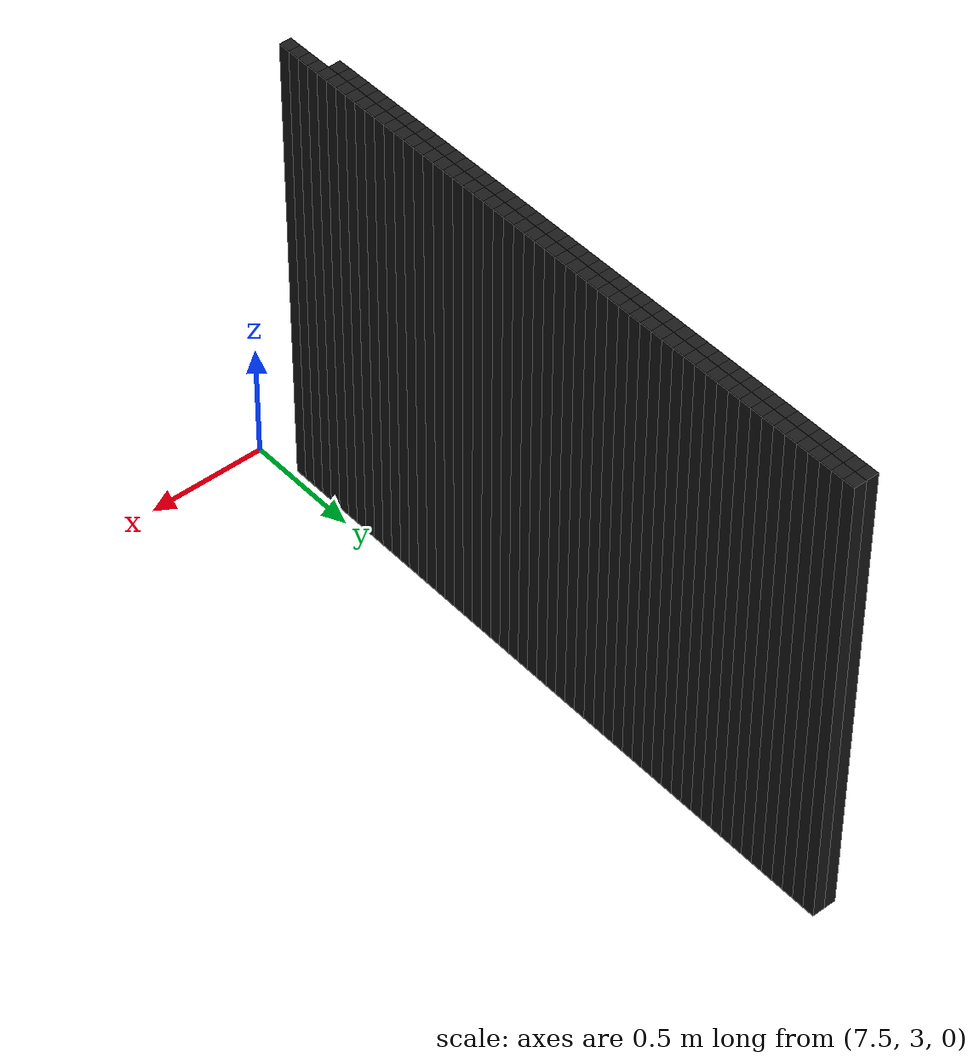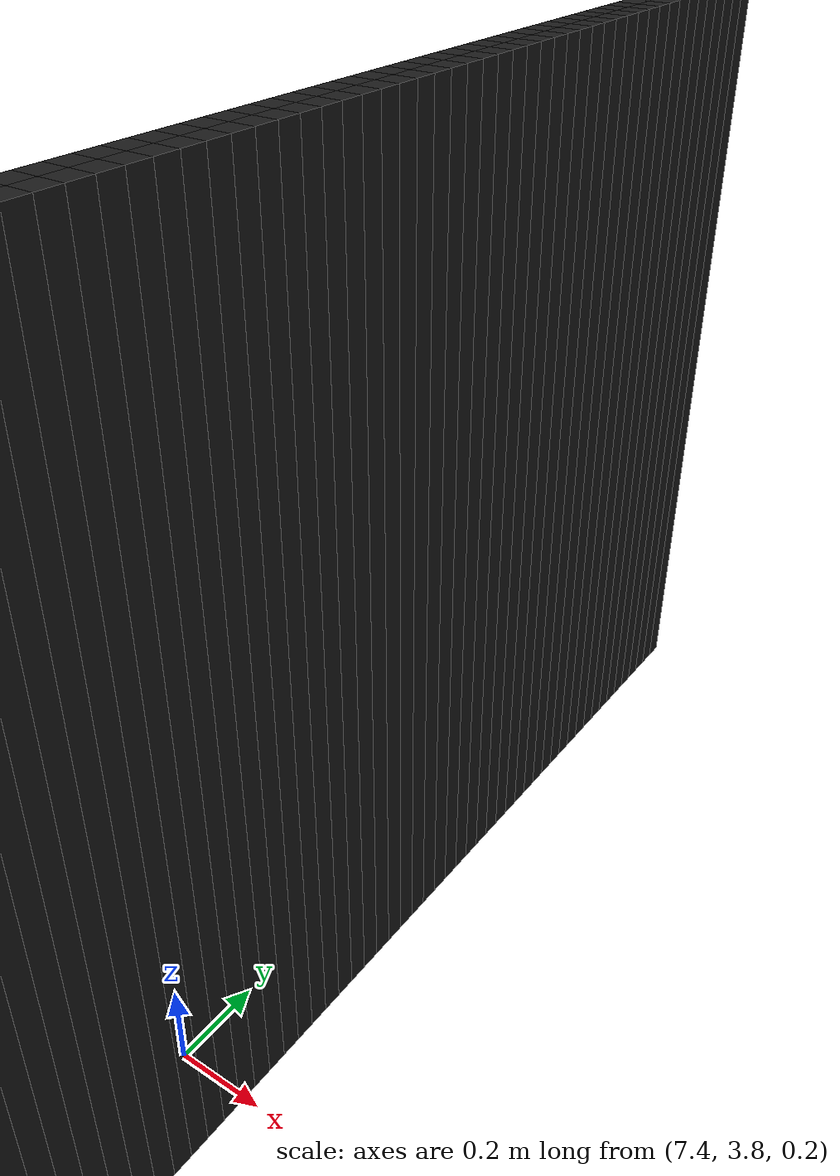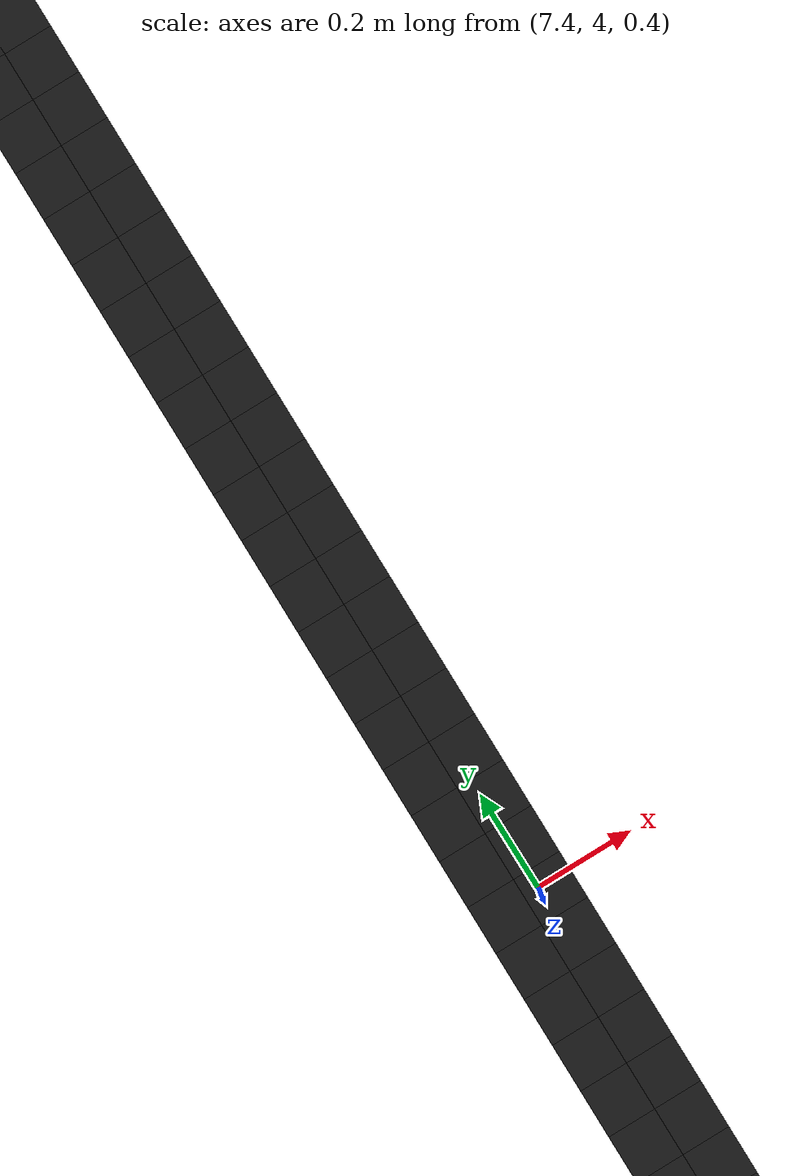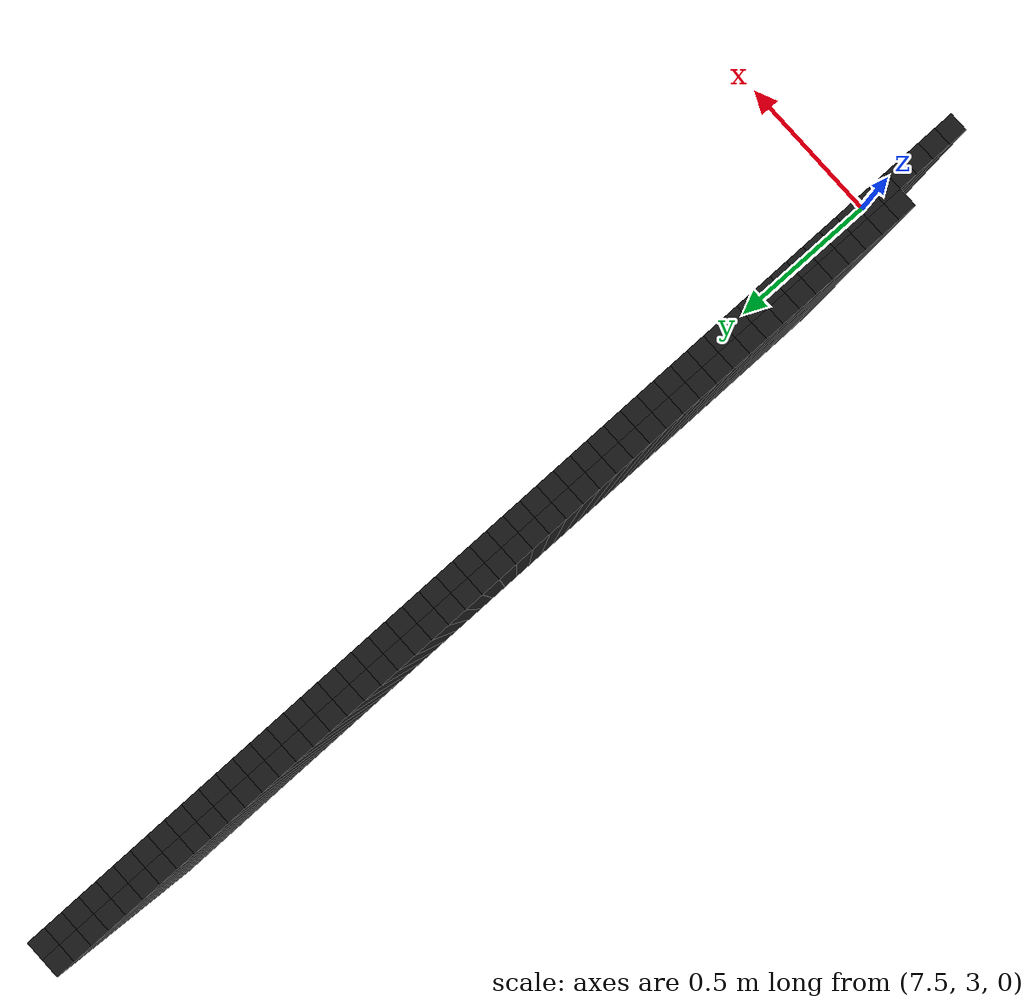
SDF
<sdf version="1.6">
 <model name="obstacle_238_49">
  <pose>7.390000000000001 5.8999999999999995 1.0 0 0 0</pose>
  <static>true</static>
  <link name="box_link">
   <collision name="box_collision"><geometry><box><size>0.05 0.05 2.0</size></box></geometry></collision>
   <visual name="box_visual">
    <geometry><box><size>0.05 0.05 2.0</size></box></geometry>
    <material><ambient>0 0 0 1</ambient><diffuse>0.1 0.1 0.1 1</diffuse></material>
   </visual>
  </link>
 </model>
 <model name="obstacle_239_49">
  <pose>7.440000000000001 5.8999999999999995 1.0 0 0 0</pose>
  <static>true</static>
  <link name="box_link">
   <collision name="box_collision"><geometry><box><size>0.05 0.05 2.0</size></box></geometry></collision>
   <visual name="box_visual">
    <geometry><box><size>0.05 0.05 2.0</size></box></geometry>
    <material><ambient>0 0 0 1</ambient><diffuse>0.1 0.1 0.1 1</diffuse></material>
   </visual>
  </link>
 </model>
 <model name="obstacle_238_50">
  <pose>7.390000000000001 5.8500000000000005 1.0 0 0 0</pose>
  <static>true</static>
  <link name="box_link">
   <collision name="box_collision"><geometry><box><size>0.05 0.05 2.0</size></box></geometry></collision>
   <visual name="box_visual">
    <geometry><box><size>0.05 0.05 2.0</size></box></geometry>
    <material><ambient>0 0 0 1</ambient><diffuse>0.1 0.1 0.1 1</diffuse></material>
   </visual>
  </link>
 </model>
 <model name="obstacle_239_50">
  <pose>7.440000000000001 5.8500000000000005 1.0 0 0 0</pose>
  <static>true</static>
  <link name="box_link">
   <collision name="box_collision"><geometry><box><size>0.05 0.05 2.0</size></box></geometry></collision>
   <visual name="box_visual">
    <geometry><box><size>0.05 0.05 2.0</size></box></geometry>
    <material><ambient>0 0 0 1</ambient><diffuse>0.1 0.1 0.1 1</diffuse></material>
   </visual>
  </link>
 </model>
 <model name="obstacle_238_51">
  <pose>7.390000000000001 5.8 1.0 0 0 0</pose>
  <static>true</static>
  <link name="box_link">
   <collision name="box_collision"><geometry><box><size>0.05 0.05 2.0</size></box></geometry></collision>
   <visual name="box_visual">
    <geometry><box><size>0.05 0.05 2.0</size></box></geometry>
    <material><ambient>0 0 0 1</ambient><diffuse>0.1 0.1 0.1 1</diffuse></material>
   </visual>
  </link>
 </model>
 <model name="obstacle_239_51">
  <pose>7.440000000000001 5.8 1.0 0 0 0</pose>
  <static>true</static>
  <link name="box_link">
   <collision name="box_collision"><geometry><box><size>0.05 0.05 2.0</size></box></geometry></collision>
   <visual name="box_visual">
    <geometry><box><size>0.05 0.05 2.0</size></box></geometry>
    <material><ambient>0 0 0 1</ambient><diffuse>0.1 0.1 0.1 1</diffuse></material>
   </visual>
  </link>
 </model>
 <model name="obstacle_238_52">
  <pose>7.390000000000001 5.75 1.0 0 0 0</pose>
  <static>true</static>
  <link name="box_link">
   <collision name="box_collision"><geometry><box><size>0.05 0.05 2.0</size></box></geometry></collision>
   <visual name="box_visual">
    <geometry><box><size>0.05 0.05 2.0</size></box></geometry>
    <material><ambient>0 0 0 1</ambient><diffuse>0.1 0.1 0.1 1</diffuse></material>
   </visual>
  </link>
 </model>
 <model name="obstacle_239_52">
  <pose>7.440000000000001 5.75 1.0 0 0 0</pose>
  <static>true</static>
  <link name="box_link">
   <collision name="box_collision"><geometry><box><size>0.05 0.05 2.0</size></box></geometry></collision>
   <visual name="box_visual">
    <geometry><box><size>0.05 0.05 2.0</size></box></geometry>
    <material><ambient>0 0 0 1</ambient><diffuse>0.1 0.1 0.1 1</diffuse></material>
   </visual>
  </link>
 </model>
 <model name="obstacle_238_53">
  <pose>7.390000000000001 5.7 1.0 0 0 0</pose>
  <static>true</static>
  <link name="box_link">
   <collision name="box_collision"><geometry><box><size>0.05 0.05 2.0</size></box></geometry></collision>
   <visual name="box_visual">
    <geometry><box><size>0.05 0.05 2.0</size></box></geometry>
    <material><ambient>0 0 0 1</ambient><diffuse>0.1 0.1 0.1 1</diffuse></material>
   </visual>
  </link>
 </model>
 <model name="obstacle_239_53">
  <pose>7.440000000000001 5.7 1.0 0 0 0</pose>
  <static>true</static>
  <link name="box_link">
   <collision name="box_collision"><geometry><box><size>0.05 0.05 2.0</size></box></geometry></collision>
   <visual name="box_visual">
    <geometry><box><size>0.05 0.05 2.0</size></box></geometry>
    <material><ambient>0 0 0 1</ambient><diffuse>0.1 0.1 0.1 1</diffuse></material>
   </visual>
  </link>
 </model>
 <model name="obstacle_238_54">
  <pose>7.390000000000001 5.65 1.0 0 0 0</pose>
  <static>true</static>
  <link name="box_link">
   <collision name="box_collision"><geometry><box><size>0.05 0.05 2.0</size></box></geometry></collision>
   <visual name="box_visual">
    <geometry><box><size>0.05 0.05 2.0</size></box></geometry>
    <material><ambient>0 0 0 1</ambient><diffuse>0.1 0.1 0.1 1</diffuse></material>
   </visual>
  </link>
 </model>
 <model name="obstacle_239_54">
  <pose>7.440000000000001 5.65 1.0 0 0 0</pose>
  <static>true</static>
  <link name="box_link">
   <collision name="box_collision"><geometry><box><size>0.05 0.05 2.0</size></box></geometry></collision>
   <visual name="box_visual">
    <geometry><box><size>0.05 0.05 2.0</size></box></geometry>
    <material><ambient>0 0 0 1</ambient><diffuse>0.1 0.1 0.1 1</diffuse></material>
   </visual>
  </link>
 </model>
 <model name="obstacle_238_55">
  <pose>7.390000000000001 5.6000000000000005 1.0 0 0 0</pose>
  <static>true</static>
  <link name="box_link">
   <collision name="box_collision"><geometry><box><size>0.05 0.05 2.0</size></box></geometry></collision>
   <visual name="box_visual">
    <geometry><box><size>0.05 0.05 2.0</size></box></geometry>
    <material><ambient>0 0 0 1</ambient><diffuse>0.1 0.1 0.1 1</diffuse></material>
   </visual>
  </link>
 </model>
 <model name="obstacle_239_55">
  <pose>7.440000000000001 5.6000000000000005 1.0 0 0 0</pose>
  <static>true</static>
  <link name="box_link">
   <collision name="box_collision"><geometry><box><size>0.05 0.05 2.0</size></box></geometry></collision>
   <visual name="box_visual">
    <geometry><box><size>0.05 0.05 2.0</size></box></geometry>
    <material><ambient>0 0 0 1</ambient><diffuse>0.1 0.1 0.1 1</diffuse></material>
   </visual>
  </link>
 </model>
 <model name="obstacle_238_56">
  <pose>7.390000000000001 5.55 1.0 0 0 0</pose>
  <static>true</static>
  <link name="box_link">
   <collision name="box_collision"><geometry><box><size>0.05 0.05 2.0</size></box></geometry></collision>
   <visual name="box_visual">
    <geometry><box><size>0.05 0.05 2.0</size></box></geometry>
    <material><ambient>0 0 0 1</ambient><diffuse>0.1 0.1 0.1 1</diffuse></material>
   </visual>
  </link>
 </model>
 <model name="obstacle_239_56">
  <pose>7.440000000000001 5.55 1.0 0 0 0</pose>
  <static>true</static>
  <link name="box_link">
   <collision name="box_collision"><geometry><box><size>0.05 0.05 2.0</size></box></geometry></collision>
   <visual name="box_visual">
    <geometry><box><size>0.05 0.05 2.0</size></box></geometry>
    <material><ambient>0 0 0 1</ambient><diffuse>0.1 0.1 0.1 1</diffuse></material>
   </visual>
  </link>
 </model>
 <model name="obstacle_238_57">
  <pose>7.390000000000001 5.5 1.0 0 0 0</pose>
  <static>true</static>
  <link name="box_link">
   <collision name="box_collision"><geometry><box><size>0.05 0.05 2.0</size></box></geometry></collision>
   <visual name="box_visual">
    <geometry><box><size>0.05 0.05 2.0</size></box></geometry>
    <material><ambient>0 0 0 1</ambient><diffuse>0.1 0.1 0.1 1</diffuse></material>
   </visual>
  </link>
 </model>
 <model name="obstacle_239_57">
  <pose>7.440000000000001 5.5 1.0 0 0 0</pose>
  <static>true</static>
  <link name="box_link">
   <collision name="box_collision"><geometry><box><size>0.05 0.05 2.0</size></box></geometry></collision>
   <visual name="box_visual">
    <geometry><box><size>0.05 0.05 2.0</size></box></geometry>
    <material><ambient>0 0 0 1</ambient><diffuse>0.1 0.1 0.1 1</diffuse></material>
   </visual>
  </link>
 </model>
 <model name="obstacle_238_58">
  <pose>7.390000000000001 5.45 1.0 0 0 0</pose>
  <static>true</static>
  <link name="box_link">
   <collision name="box_collision"><geometry><box><size>0.05 0.05 2.0</size></box></geometry></collision>
   <visual name="box_visual">
    <geometry><box><size>0.05 0.05 2.0</size></box></geometry>
    <material><ambient>0 0 0 1</ambient><diffuse>0.1 0.1 0.1 1</diffuse></material>
   </visual>
  </link>
 </model>
 <model name="obstacle_239_58">
  <pose>7.440000000000001 5.45 1.0 0 0 0</pose>
  <static>true</static>
  <link name="box_link">
   <collision name="box_collision"><geometry><box><size>0.05 0.05 2.0</size></box></geometry></collision>
   <visual name="box_visual">
    <geometry><box><size>0.05 0.05 2.0</size></box></geometry>
    <material><ambient>0 0 0 1</ambient><diffuse>0.1 0.1 0.1 1</diffuse></material>
   </visual>
  </link>
 </model>
 <model name="obstacle_238_59">
  <pose>7.390000000000001 5.4 1.0 0 0 0</pose>
  <static>true</static>
  <link name="box_link">
   <collision name="box_collision"><geometry><box><size>0.05 0.05 2.0</size></box></geometry></collision>
   <visual name="box_visual">
    <geometry><box><size>0.05 0.05 2.0</size></box></geometry>
    <material><ambient>0 0 0 1</ambient><diffuse>0.1 0.1 0.1 1</diffuse></material>
   </visual>
  </link>
 </model>
 <model name="obstacle_239_59">
  <pose>7.440000000000001 5.4 1.0 0 0 0</pose>
  <static>true</static>
  <link name="box_link">
   <collision name="box_collision"><geometry><box><size>0.05 0.05 2.0</size></box></geometry></collision>
   <visual name="box_visual">
    <geometry><box><size>0.05 0.05 2.0</size></box></geometry>
    <material><ambient>0 0 0 1</ambient><diffuse>0.1 0.1 0.1 1</diffuse></material>
   </visual>
  </link>
 </model>
 <model name="obstacle_238_60">
  <pose>7.390000000000001 5.3500000000000005 1.0 0 0 0</pose>
  <static>true</static>
  <link name="box_link">
   <collision name="box_collision"><geometry><box><size>0.05 0.05 2.0</size></box></geometry></collision>
   <visual name="box_visual">
    <geometry><box><size>0.05 0.05 2.0</size></box></geometry>
    <material><ambient>0 0 0 1</ambient><diffuse>0.1 0.1 0.1 1</diffuse></material>
   </visual>
  </link>
 </model>
 <model name="obstacle_239_60">
  <pose>7.440000000000001 5.3500000000000005 1.0 0 0 0</pose>
  <static>true</static>
  <link name="box_link">
   <collision name="box_collision"><geometry><box><size>0.05 0.05 2.0</size></box></geometry></collision>
   <visual name="box_visual">
    <geometry><box><size>0.05 0.05 2.0</size></box></geometry>
    <material><ambient>0 0 0 1</ambient><diffuse>0.1 0.1 0.1 1</diffuse></material>
   </visual>
  </link>
 </model>
 <model name="obstacle_238_61">
  <pose>7.390000000000001 5.3 1.0 0 0 0</pose>
  <static>true</static>
  <link name="box_link">
   <collision name="box_collision"><geometry><box><size>0.05 0.05 2.0</size></box></geometry></collision>
   <visual name="box_visual">
    <geometry><box><size>0.05 0.05 2.0</size></box></geometry>
    <material><ambient>0 0 0 1</ambient><diffuse>0.1 0.1 0.1 1</diffuse></material>
   </visual>
  </link>
 </model>
 <model name="obstacle_239_61">
  <pose>7.440000000000001 5.3 1.0 0 0 0</pose>
  <static>true</static>
  <link name="box_link">
   <collision name="box_collision"><geometry><box><size>0.05 0.05 2.0</size></box></geometry></collision>
   <visual name="box_visual">
    <geometry><box><size>0.05 0.05 2.0</size></box></geometry>
    <material><ambient>0 0 0 1</ambient><diffuse>0.1 0.1 0.1 1</diffuse></material>
   </visual>
  </link>
 </model>
 <model name="obstacle_238_62">
  <pose>7.390000000000001 5.25 1.0 0 0 0</pose>
  <static>true</static>
  <link name="box_link">
   <collision name="box_collision"><geometry><box><size>0.05 0.05 2.0</size></box></geometry></collision>
   <visual name="box_visual">
    <geometry><box><size>0.05 0.05 2.0</size></box></geometry>
    <material><ambient>0 0 0 1</ambient><diffuse>0.1 0.1 0.1 1</diffuse></material>
   </visual>
  </link>
 </model>
 <model name="obstacle_239_62">
  <pose>7.440000000000001 5.25 1.0 0 0 0</pose>
  <static>true</static>
  <link name="box_link">
   <collision name="box_collision"><geometry><box><size>0.05 0.05 2.0</size></box></geometry></collision>
   <visual name="box_visual">
    <geometry><box><size>0.05 0.05 2.0</size></box></geometry>
    <material><ambient>0 0 0 1</ambient><diffuse>0.1 0.1 0.1 1</diffuse></material>
   </visual>
  </link>
 </model>
 <model name="obstacle_238_63">
  <pose>7.390000000000001 5.2 1.0 0 0 0</pose>
  <static>true</static>
  <link name="box_link">
   <collision name="box_collision"><geometry><box><size>0.05 0.05 2.0</size></box></geometry></collision>
   <visual name="box_visual">
    <geometry><box><size>0.05 0.05 2.0</size></box></geometry>
    <material><ambient>0 0 0 1</ambient><diffuse>0.1 0.1 0.1 1</diffuse></material>
   </visual>
  </link>
 </model>
 <model name="obstacle_239_63">
  <pose>7.440000000000001 5.2 1.0 0 0 0</pose>
  <static>true</static>
  <link name="box_link">
   <collision name="box_collision"><geometry><box><size>0.05 0.05 2.0</size></box></geometry></collision>
   <visual name="box_visual">
    <geometry><box><size>0.05 0.05 2.0</size></box></geometry>
    <material><ambient>0 0 0 1</ambient><diffuse>0.1 0.1 0.1 1</diffuse></material>
   </visual>
  </link>
 </model>
 <model name="obstacle_238_64">
  <pose>7.390000000000001 5.15 1.0 0 0 0</pose>
  <static>true</static>
  <link name="box_link">
   <collision name="box_collision"><geometry><box><size>0.05 0.05 2.0</size></box></geometry></collision>
   <visual name="box_visual">
    <geometry><box><size>0.05 0.05 2.0</size></box></geometry>
    <material><ambient>0 0 0 1</ambient><diffuse>0.1 0.1 0.1 1</diffuse></material>
   </visual>
  </link>
 </model>
 <model name="obstacle_239_64">
  <pose>7.440000000000001 5.15 1.0 0 0 0</pose>
  <static>true</static>
  <link name="box_link">
   <collision name="box_collision"><geometry><box><size>0.05 0.05 2.0</size></box></geometry></collision>
   <visual name="box_visual">
    <geometry><box><size>0.05 0.05 2.0</size></box></geometry>
    <material><ambient>0 0 0 1</ambient><diffuse>0.1 0.1 0.1 1</diffuse></material>
   </visual>
  </link>
 </model>
 <model name="obstacle_238_65">
  <pose>7.390000000000001 5.1000000000000005 1.0 0 0 0</pose>
  <static>true</static>
  <link name="box_link">
   <collision name="box_collision"><geometry><box><size>0.05 0.05 2.0</size></box></geometry></collision>
   <visual name="box_visual">
    <geometry><box><size>0.05 0.05 2.0</size></box></geometry>
    <material><ambient>0 0 0 1</ambient><diffuse>0.1 0.1 0.1 1</diffuse></material>
   </visual>
  </link>
 </model>
 <model name="obstacle_239_65">
  <pose>7.440000000000001 5.1000000000000005 1.0 0 0 0</pose>
  <static>true</static>
  <link name="box_link">
   <collision name="box_collision"><geometry><box><size>0.05 0.05 2.0</size></box></geometry></collision>
   <visual name="box_visual">
    <geometry><box><size>0.05 0.05 2.0</size></box></geometry>
    <material><ambient>0 0 0 1</ambient><diffuse>0.1 0.1 0.1 1</diffuse></material>
   </visual>
  </link>
 </model>
 <model name="obstacle_238_66">
  <pose>7.390000000000001 5.05 1.0 0 0 0</pose>
  <static>true</static>
  <link name="box_link">
   <collision name="box_collision"><geometry><box><size>0.05 0.05 2.0</size></box></geometry></collision>
   <visual name="box_visual">
    <geometry><box><size>0.05 0.05 2.0</size></box></geometry>
    <material><ambient>0 0 0 1</ambient><diffuse>0.1 0.1 0.1 1</diffuse></material>
   </visual>
  </link>
 </model>
 <model name="obstacle_239_66">
  <pose>7.440000000000001 5.05 1.0 0 0 0</pose>
  <static>true</static>
  <link name="box_link">
   <collision name="box_collision"><geometry><box><size>0.05 0.05 2.0</size></box></geometry></collision>
   <visual name="box_visual">
    <geometry><box><size>0.05 0.05 2.0</size></box></geometry>
    <material><ambient>0 0 0 1</ambient><diffuse>0.1 0.1 0.1 1</diffuse></material>
   </visual>
  </link>
 </model>
 <model name="obstacle_238_67">
  <pose>7.390000000000001 5.0 1.0 0 0 0</pose>
  <static>true</static>
  <link name="box_link">
   <collision name="box_collision"><geometry><box><size>0.05 0.05 2.0</size></box></geometry></collision>
   <visual name="box_visual">
    <geometry><box><size>0.05 0.05 2.0</size></box></geometry>
    <material><ambient>0 0 0 1</ambient><diffuse>0.1 0.1 0.1 1</diffuse></material>
   </visual>
  </link>
 </model>
 <model name="obstacle_239_67">
  <pose>7.440000000000001 5.0 1.0 0 0 0</pose>
  <static>true</static>
  <link name="box_link">
   <collision name="box_collision"><geometry><box><size>0.05 0.05 2.0</size></box></geometry></collision>
   <visual name="box_visual">
    <geometry><box><size>0.05 0.05 2.0</size></box></geometry>
    <material><ambient>0 0 0 1</ambient><diffuse>0.1 0.1 0.1 1</diffuse></material>
   </visual>
  </link>
 </model>
 <model name="obstacle_238_68">
  <pose>7.390000000000001 4.95 1.0 0 0 0</pose>
  <static>true</static>
  <link name="box_link">
   <collision name="box_collision"><geometry><box><size>0.05 0.05 2.0</size></box></geometry></collision>
   <visual name="box_visual">
    <geometry><box><size>0.05 0.05 2.0</size></box></geometry>
    <material><ambient>0 0 0 1</ambient><diffuse>0.1 0.1 0.1 1</diffuse></material>
   </visual>
  </link>
 </model>
 <model name="obstacle_239_68">
  <pose>7.440000000000001 4.95 1.0 0 0 0</pose>
  <static>true</static>
  <link name="box_link">
   <collision name="box_collision"><geometry><box><size>0.05 0.05 2.0</size></box></geometry></collision>
   <visual name="box_visual">
    <geometry><box><size>0.05 0.05 2.0</size></box></geometry>
    <material><ambient>0 0 0 1</ambient><diffuse>0.1 0.1 0.1 1</diffuse></material>
   </visual>
  </link>
 </model>
 <model name="obstacle_238_69">
  <pose>7.390000000000001 4.9 1.0 0 0 0</pose>
  <static>true</static>
  <link name="box_link">
   <collision name="box_collision"><geometry><box><size>0.05 0.05 2.0</size></box></geometry></collision>
   <visual name="box_visual">
    <geometry><box><size>0.05 0.05 2.0</size></box></geometry>
    <material><ambient>0 0 0 1</ambient><diffuse>0.1 0.1 0.1 1</diffuse></material>
   </visual>
  </link>
 </model>
 <model name="obstacle_239_69">
  <pose>7.440000000000001 4.9 1.0 0 0 0</pose>
  <static>true</static>
  <link name="box_link">
   <collision name="box_collision"><geometry><box><size>0.05 0.05 2.0</size></box></geometry></collision>
   <visual name="box_visual">
    <geometry><box><size>0.05 0.05 2.0</size></box></geometry>
    <material><ambient>0 0 0 1</ambient><diffuse>0.1 0.1 0.1 1</diffuse></material>
   </visual>
  </link>
 </model>
 <model name="obstacle_238_70">
  <pose>7.390000000000001 4.8500000000000005 1.0 0 0 0</pose>
  <static>true</static>
  <link name="box_link">
   <collision name="box_collision"><geometry><box><size>0.05 0.05 2.0</size></box></geometry></collision>
   <visual name="box_visual">
    <geometry><box><size>0.05 0.05 2.0</size></box></geometry>
    <material><ambient>0 0 0 1</ambient><diffuse>0.1 0.1 0.1 1</diffuse></material>
   </visual>
  </link>
 </model>
 <model name="obstacle_239_70">
  <pose>7.440000000000001 4.8500000000000005 1.0 0 0 0</pose>
  <static>true</static>
  <link name="box_link">
   <collision name="box_collision"><geometry><box><size>0.05 0.05 2.0</size></box></geometry></collision>
   <visual name="box_visual">
    <geometry><box><size>0.05 0.05 2.0</size></box></geometry>
    <material><ambient>0 0 0 1</ambient><diffuse>0.1 0.1 0.1 1</diffuse></material>
   </visual>
  </link>
 </model>
 <model name="obstacle_238_71">
  <pose>7.390000000000001 4.8 1.0 0 0 0</pose>
  <static>true</static>
  <link name="box_link">
   <collision name="box_collision"><geometry><box><size>0.05 0.05 2.0</size></box></geometry></collision>
   <visual name="box_visual">
    <geometry><box><size>0.05 0.05 2.0</size></box></geometry>
    <material><ambient>0 0 0 1</ambient><diffuse>0.1 0.1 0.1 1</diffuse></material>
   </visual>
  </link>
 </model>
 <model name="obstacle_239_71">
  <pose>7.440000000000001 4.8 1.0 0 0 0</pose>
  <static>true</static>
  <link name="box_link">
   <collision name="box_collision"><geometry><box><size>0.05 0.05 2.0</size></box></geometry></collision>
   <visual name="box_visual">
    <geometry><box><size>0.05 0.05 2.0</size></box></geometry>
    <material><ambient>0 0 0 1</ambient><diffuse>0.1 0.1 0.1 1</diffuse></material>
   </visual>
  </link>
 </model>
 <model name="obstacle_238_72">
  <pose>7.390000000000001 4.75 1.0 0 0 0</pose>
  <static>true</static>
  <link name="box_link">
   <collision name="box_collision"><geometry><box><size>0.05 0.05 2.0</size></box></geometry></collision>
   <visual name="box_visual">
    <geometry><box><size>0.05 0.05 2.0</size></box></geometry>
    <material><ambient>0 0 0 1</ambient><diffuse>0.1 0.1 0.1 1</diffuse></material>
   </visual>
  </link>
 </model>
 <model name="obstacle_239_72">
  <pose>7.440000000000001 4.75 1.0 0 0 0</pose>
  <static>true</static>
  <link name="box_link">
   <collision name="box_collision"><geometry><box><size>0.05 0.05 2.0</size></box></geometry></collision>
   <visual name="box_visual">
    <geometry><box><size>0.05 0.05 2.0</size></box></geometry>
    <material><ambient>0 0 0 1</ambient><diffuse>0.1 0.1 0.1 1</diffuse></material>
   </visual>
  </link>
 </model>
 <model name="obstacle_238_73">
  <pose>7.390000000000001 4.7 1.0 0 0 0</pose>
  <static>true</static>
  <link name="box_link">
   <collision name="box_collision"><geometry><box><size>0.05 0.05 2.0</size></box></geometry></collision>
   <visual name="box_visual">
    <geometry><box><size>0.05 0.05 2.0</size></box></geometry>
    <material><ambient>0 0 0 1</ambient><diffuse>0.1 0.1 0.1 1</diffuse></material>
   </visual>
  </link>
 </model>
 <model name="obstacle_239_73">
  <pose>7.440000000000001 4.7 1.0 0 0 0</pose>
  <static>true</static>
  <link name="box_link">
   <collision name="box_collision"><geometry><box><size>0.05 0.05 2.0</size></box></geometry></collision>
   <visual name="box_visual">
    <geometry><box><size>0.05 0.05 2.0</size></box></geometry>
    <material><ambient>0 0 0 1</ambient><diffuse>0.1 0.1 0.1 1</diffuse></material>
   </visual>
  </link>
 </model>
 <model name="obstacle_238_74">
  <pose>7.390000000000001 4.65 1.0 0 0 0</pose>
  <static>true</static>
  <link name="box_link">
   <collision name="box_collision"><geometry><box><size>0.05 0.05 2.0</size></box></geometry></collision>
   <visual name="box_visual">
    <geometry><box><size>0.05 0.05 2.0</size></box></geometry>
    <material><ambient>0 0 0 1</ambient><diffuse>0.1 0.1 0.1 1</diffuse></material>
   </visual>
  </link>
 </model>
 <model name="obstacle_239_74">
  <pose>7.440000000000001 4.65 1.0 0 0 0</pose>
  <static>true</static>
  <link name="box_link">
   <collision name="box_collision"><geometry><box><size>0.05 0.05 2.0</size></box></geometry></collision>
   <visual name="box_visual">
    <geometry><box><size>0.05 0.05 2.0</size></box></geometry>
    <material><ambient>0 0 0 1</ambient><diffuse>0.1 0.1 0.1 1</diffuse></material>
   </visual>
  </link>
 </model>
 <model name="obstacle_238_75">
  <pose>7.390000000000001 4.6000000000000005 1.0 0 0 0</pose>
  <static>true</static>
  <link name="box_link">
   <collision name="box_collision"><geometry><box><size>0.05 0.05 2.0</size></box></geometry></collision>
   <visual name="box_visual">
    <geometry><box><size>0.05 0.05 2.0</size></box></geometry>
    <material><ambient>0 0 0 1</ambient><diffuse>0.1 0.1 0.1 1</diffuse></material>
   </visual>
  </link>
 </model>
 <model name="obstacle_239_75">
  <pose>7.440000000000001 4.6000000000000005 1.0 0 0 0</pose>
  <static>true</static>
  <link name="box_link">
   <collision name="box_collision"><geometry><box><size>0.05 0.05 2.0</size></box></geometry></collision>
   <visual name="box_visual">
    <geometry><box><size>0.05 0.05 2.0</size></box></geometry>
    <material><ambient>0 0 0 1</ambient><diffuse>0.1 0.1 0.1 1</diffuse></material>
   </visual>
  </link>
 </model>
 <model name="obstacle_238_76">
  <pose>7.390000000000001 4.55 1.0 0 0 0</pose>
  <static>true</static>
  <link name="box_link">
   <collision name="box_collision"><geometry><box><size>0.05 0.05 2.0</size></box></geometry></collision>
   <visual name="box_visual">
    <geometry><box><size>0.05 0.05 2.0</size></box></geometry>
    <material><ambient>0 0 0 1</ambient><diffuse>0.1 0.1 0.1 1</diffuse></material>
   </visual>
  </link>
 </model>
 <model name="obstacle_239_76">
  <pose>7.440000000000001 4.55 1.0 0 0 0</pose>
  <static>true</static>
  <link name="box_link">
   <collision name="box_collision"><geometry><box><size>0.05 0.05 2.0</size></box></geometry></collision>
   <visual name="box_visual">
    <geometry><box><size>0.05 0.05 2.0</size></box></geometry>
    <material><ambient>0 0 0 1</ambient><diffuse>0.1 0.1 0.1 1</diffuse></material>
   </visual>
  </link>
 </model>
 <model name="obstacle_238_77">
  <pose>7.390000000000001 4.5 1.0 0 0 0</pose>
  <static>true</static>
  <link name="box_link">
   <collision name="box_collision"><geometry><box><size>0.05 0.05 2.0</size></box></geometry></collision>
   <visual name="box_visual">
    <geometry><box><size>0.05 0.05 2.0</size></box></geometry>
    <material><ambient>0 0 0 1</ambient><diffuse>0.1 0.1 0.1 1</diffuse></material>
   </visual>
  </link>
 </model>
 <model name="obstacle_239_77">
  <pose>7.440000000000001 4.5 1.0 0 0 0</pose>
  <static>true</static>
  <link name="box_link">
   <collision name="box_collision"><geometry><box><size>0.05 0.05 2.0</size></box></geometry></collision>
   <visual name="box_visual">
    <geometry><box><size>0.05 0.05 2.0</size></box></geometry>
    <material><ambient>0 0 0 1</ambient><diffuse>0.1 0.1 0.1 1</diffuse></material>
   </visual>
  </link>
 </model>
 <model name="obstacle_238_78">
  <pose>7.390000000000001 4.45 1.0 0 0 0</pose>
  <static>true</static>
  <link name="box_link">
   <collision name="box_collision"><geometry><box><size>0.05 0.05 2.0</size></box></geometry></collision>
   <visual name="box_visual">
    <geometry><box><size>0.05 0.05 2.0</size></box></geometry>
    <material><ambient>0 0 0 1</ambient><diffuse>0.1 0.1 0.1 1</diffuse></material>
   </visual>
  </link>
 </model>
 <model name="obstacle_239_78">
  <pose>7.440000000000001 4.45 1.0 0 0 0</pose>
  <static>true</static>
  <link name="box_link">
   <collision name="box_collision"><geometry><box><size>0.05 0.05 2.0</size></box></geometry></collision>
   <visual name="box_visual">
    <geometry><box><size>0.05 0.05 2.0</size></box></geometry>
    <material><ambient>0 0 0 1</ambient><diffuse>0.1 0.1 0.1 1</diffuse></material>
   </visual>
  </link>
 </model>
 <model name="obstacle_238_79">
  <pose>7.390000000000001 4.4 1.0 0 0 0</pose>
  <static>true</static>
  <link name="box_link">
   <collision name="box_collision"><geometry><box><size>0.05 0.05 2.0</size></box></geometry></collision>
   <visual name="box_visual">
    <geometry><box><size>0.05 0.05 2.0</size></box></geometry>
    <material><ambient>0 0 0 1</ambient><diffuse>0.1 0.1 0.1 1</diffuse></material>
   </visual>
  </link>
 </model>
 <model name="obstacle_239_79">
  <pose>7.440000000000001 4.4 1.0 0 0 0</pose>
  <static>true</static>
  <link name="box_link">
   <collision name="box_collision"><geometry><box><size>0.05 0.05 2.0</size></box></geometry></collision>
   <visual name="box_visual">
    <geometry><box><size>0.05 0.05 2.0</size></box></geometry>
    <material><ambient>0 0 0 1</ambient><diffuse>0.1 0.1 0.1 1</diffuse></material>
   </visual>
  </link>
 </model>
 <model name="obstacle_238_80">
  <pose>7.390000000000001 4.3500000000000005 1.0 0 0 0</pose>
  <static>true</static>
  <link name="box_link">
   <collision name="box_collision"><geometry><box><size>0.05 0.05 2.0</size></box></geometry></collision>
   <visual name="box_visual">
    <geometry><box><size>0.05 0.05 2.0</size></box></geometry>
    <material><ambient>0 0 0 1</ambient><diffuse>0.1 0.1 0.1 1</diffuse></material>
   </visual>
  </link>
 </model>
 <model name="obstacle_239_80">
  <pose>7.440000000000001 4.3500000000000005 1.0 0 0 0</pose>
  <static>true</static>
  <link name="box_link">
   <collision name="box_collision"><geometry><box><size>0.05 0.05 2.0</size></box></geometry></collision>
   <visual name="box_visual">
    <geometry><box><size>0.05 0.05 2.0</size></box></geometry>
    <material><ambient>0 0 0 1</ambient><diffuse>0.1 0.1 0.1 1</diffuse></material>
   </visual>
  </link>
 </model>
 <model name="obstacle_238_81">
  <pose>7.390000000000001 4.3 1.0 0 0 0</pose>
  <static>true</static>
  <link name="box_link">
   <collision name="box_collision"><geometry><box><size>0.05 0.05 2.0</size></box></geometry></collision>
   <visual name="box_visual">
    <geometry><box><size>0.05 0.05 2.0</size></box></geometry>
    <material><ambient>0 0 0 1</ambient><diffuse>0.1 0.1 0.1 1</diffuse></material>
   </visual>
  </link>
 </model>
 <model name="obstacle_239_81">
  <pose>7.440000000000001 4.3 1.0 0 0 0</pose>
  <static>true</static>
  <link name="box_link">
   <collision name="box_collision"><geometry><box><size>0.05 0.05 2.0</size></box></geometry></collision>
   <visual name="box_visual">
    <geometry><box><size>0.05 0.05 2.0</size></box></geometry>
    <material><ambient>0 0 0 1</ambient><diffuse>0.1 0.1 0.1 1</diffuse></material>
   </visual>
  </link>
 </model>
 <model name="obstacle_238_82">
  <pose>7.390000000000001 4.25 1.0 0 0 0</pose>
  <static>true</static>
  <link name="box_link">
   <collision name="box_collision"><geometry><box><size>0.05 0.05 2.0</size></box></geometry></collision>
   <visual name="box_visual">
    <geometry><box><size>0.05 0.05 2.0</size></box></geometry>
    <material><ambient>0 0 0 1</ambient><diffuse>0.1 0.1 0.1 1</diffuse></material>
   </visual>
  </link>
 </model>
 <model name="obstacle_239_82">
  <pose>7.440000000000001 4.25 1.0 0 0 0</pose>
  <static>true</static>
  <link name="box_link">
   <collision name="box_collision"><geometry><box><size>0.05 0.05 2.0</size></box></geometry></collision>
   <visual name="box_visual">
    <geometry><box><size>0.05 0.05 2.0</size></box></geometry>
    <material><ambient>0 0 0 1</ambient><diffuse>0.1 0.1 0.1 1</diffuse></material>
   </visual>
  </link>
 </model>
 <model name="obstacle_238_83">
  <pose>7.390000000000001 4.2 1.0 0 0 0</pose>
  <static>true</static>
  <link name="box_link">
   <collision name="box_collision"><geometry><box><size>0.05 0.05 2.0</size></box></geometry></collision>
   <visual name="box_visual">
    <geometry><box><size>0.05 0.05 2.0</size></box></geometry>
    <material><ambient>0 0 0 1</ambient><diffuse>0.1 0.1 0.1 1</diffuse></material>
   </visual>
  </link>
 </model>
 <model name="obstacle_239_83">
  <pose>7.440000000000001 4.2 1.0 0 0 0</pose>
  <static>true</static>
  <link name="box_link">
   <collision name="box_collision"><geometry><box><size>0.05 0.05 2.0</size></box></geometry></collision>
   <visual name="box_visual">
    <geometry><box><size>0.05 0.05 2.0</size></box></geometry>
    <material><ambient>0 0 0 1</ambient><diffuse>0.1 0.1 0.1 1</diffuse></material>
   </visual>
  </link>
 </model>
 <model name="obstacle_238_84">
  <pose>7.390000000000001 4.15 1.0 0 0 0</pose>
  <static>true</static>
  <link name="box_link">
   <collision name="box_collision"><geometry><box><size>0.05 0.05 2.0</size></box></geometry></collision>
   <visual name="box_visual">
    <geometry><box><size>0.05 0.05 2.0</size></box></geometry>
    <material><ambient>0 0 0 1</ambient><diffuse>0.1 0.1 0.1 1</diffuse></material>
   </visual>
  </link>
 </model>
 <model name="obstacle_239_84">
  <pose>7.440000000000001 4.15 1.0 0 0 0</pose>
  <static>true</static>
  <link name="box_link">
   <collision name="box_collision"><geometry><box><size>0.05 0.05 2.0</size></box></geometry></collision>
   <visual name="box_visual">
    <geometry><box><size>0.05 0.05 2.0</size></box></geometry>
    <material><ambient>0 0 0 1</ambient><diffuse>0.1 0.1 0.1 1</diffuse></material>
   </visual>
  </link>
 </model>
 <model name="obstacle_238_85">
  <pose>7.390000000000001 4.1000000000000005 1.0 0 0 0</pose>
  <static>true</static>
  <link name="box_link">
   <collision name="box_collision"><geometry><box><size>0.05 0.05 2.0</size></box></geometry></collision>
   <visual name="box_visual">
    <geometry><box><size>0.05 0.05 2.0</size></box></geometry>
    <material><ambient>0 0 0 1</ambient><diffuse>0.1 0.1 0.1 1</diffuse></material>
   </visual>
  </link>
 </model>
 <model name="obstacle_239_85">
  <pose>7.440000000000001 4.1000000000000005 1.0 0 0 0</pose>
  <static>true</static>
  <link name="box_link">
   <collision name="box_collision"><geometry><box><size>0.05 0.05 2.0</size></box></geometry></collision>
   <visual name="box_visual">
    <geometry><box><size>0.05 0.05 2.0</size></box></geometry>
    <material><ambient>0 0 0 1</ambient><diffuse>0.1 0.1 0.1 1</diffuse></material>
   </visual>
  </link>
 </model>
 <model name="obstacle_238_86">
  <pose>7.390000000000001 4.05 1.0 0 0 0</pose>
  <static>true</static>
  <link name="box_link">
   <collision name="box_collision"><geometry><box><size>0.05 0.05 2.0</size></box></geometry></collision>
   <visual name="box_visual">
    <geometry><box><size>0.05 0.05 2.0</size></box></geometry>
    <material><ambient>0 0 0 1</ambient><diffuse>0.1 0.1 0.1 1</diffuse></material>
   </visual>
  </link>
 </model>
 <model name="obstacle_239_86">
  <pose>7.440000000000001 4.05 1.0 0 0 0</pose>
  <static>true</static>
  <link name="box_link">
   <collision name="box_collision"><geometry><box><size>0.05 0.05 2.0</size></box></geometry></collision>
   <visual name="box_visual">
    <geometry><box><size>0.05 0.05 2.0</size></box></geometry>
    <material><ambient>0 0 0 1</ambient><diffuse>0.1 0.1 0.1 1</diffuse></material>
   </visual>
  </link>
 </model>
 <model name="obstacle_238_87">
  <pose>7.390000000000001 4.0 1.0 0 0 0</pose>
  <static>true</static>
  <link name="box_link">
   <collision name="box_collision"><geometry><box><size>0.05 0.05 2.0</size></box></geometry></collision>
   <visual name="box_visual">
    <geometry><box><size>0.05 0.05 2.0</size></box></geometry>
    <material><ambient>0 0 0 1</ambient><diffuse>0.1 0.1 0.1 1</diffuse></material>
   </visual>
  </link>
 </model>
 <model name="obstacle_239_87">
  <pose>7.440000000000001 4.0 1.0 0 0 0</pose>
  <static>true</static>
  <link name="box_link">
   <collision name="box_collision"><geometry><box><size>0.05 0.05 2.0</size></box></geometry></collision>
   <visual name="box_visual">
    <geometry><box><size>0.05 0.05 2.0</size></box></geometry>
    <material><ambient>0 0 0 1</ambient><diffuse>0.1 0.1 0.1 1</diffuse></material>
   </visual>
  </link>
 </model>
 <model name="obstacle_238_88">
  <pose>7.390000000000001 3.95 1.0 0 0 0</pose>
  <static>true</static>
  <link name="box_link">
   <collision name="box_collision"><geometry><box><size>0.05 0.05 2.0</size></box></geometry></collision>
   <visual name="box_visual">
    <geometry><box><size>0.05 0.05 2.0</size></box></geometry>
    <material><ambient>0 0 0 1</ambient><diffuse>0.1 0.1 0.1 1</diffuse></material>
   </visual>
  </link>
 </model>
 <model name="obstacle_239_88">
  <pose>7.440000000000001 3.95 1.0 0 0 0</pose>
  <static>true</static>
  <link name="box_link">
   <collision name="box_collision"><geometry><box><size>0.05 0.05 2.0</size></box></geometry></collision>
   <visual name="box_visual">
    <geometry><box><size>0.05 0.05 2.0</size></box></geometry>
    <material><ambient>0 0 0 1</ambient><diffuse>0.1 0.1 0.1 1</diffuse></material>
   </visual>
  </link>
 </model>
 <model name="obstacle_238_89">
  <pose>7.390000000000001 3.9000000000000004 1.0 0 0 0</pose>
  <static>true</static>
  <link name="box_link">
   <collision name="box_collision"><geometry><box><size>0.05 0.05 2.0</size></box></geometry></collision>
   <visual name="box_visual">
    <geometry><box><size>0.05 0.05 2.0</size></box></geometry>
    <material><ambient>0 0 0 1</ambient><diffuse>0.1 0.1 0.1 1</diffuse></material>
   </visual>
  </link>
 </model>
 <model name="obstacle_239_89">
  <pose>7.440000000000001 3.9000000000000004 1.0 0 0 0</pose>
  <static>true</static>
  <link name="box_link">
   <collision name="box_collision"><geometry><box><size>0.05 0.05 2.0</size></box></geometry></collision>
   <visual name="box_visual">
    <geometry><box><size>0.05 0.05 2.0</size></box></geometry>
    <material><ambient>0 0 0 1</ambient><diffuse>0.1 0.1 0.1 1</diffuse></material>
   </visual>
  </link>
 </model>
 <model name="obstacle_238_90">
  <pose>7.390000000000001 3.8500000000000005 1.0 0 0 0</pose>
  <static>true</static>
  <link name="box_link">
   <collision name="box_collision"><geometry><box><size>0.05 0.05 2.0</size></box></geometry></collision>
   <visual name="box_visual">
    <geometry><box><size>0.05 0.05 2.0</size></box></geometry>
    <material><ambient>0 0 0 1</ambient><diffuse>0.1 0.1 0.1 1</diffuse></material>
   </visual>
  </link>
 </model>
 <model name="obstacle_239_90">
  <pose>7.440000000000001 3.8500000000000005 1.0 0 0 0</pose>
  <static>true</static>
  <link name="box_link">
   <collision name="box_collision"><geometry><box><size>0.05 0.05 2.0</size></box></geometry></collision>
   <visual name="box_visual">
    <geometry><box><size>0.05 0.05 2.0</size></box></geometry>
    <material><ambient>0 0 0 1</ambient><diffuse>0.1 0.1 0.1 1</diffuse></material>
   </visual>
  </link>
 </model>
 <model name="obstacle_238_91">
  <pose>7.390000000000001 3.8 1.0 0 0 0</pose>
  <static>true</static>
  <link name="box_link">
   <collision name="box_collision"><geometry><box><size>0.05 0.05 2.0</size></box></geometry></collision>
   <visual name="box_visual">
    <geometry><box><size>0.05 0.05 2.0</size></box></geometry>
    <material><ambient>0 0 0 1</ambient><diffuse>0.1 0.1 0.1 1</diffuse></material>
   </visual>
  </link>
 </model>
 <model name="obstacle_239_91">
  <pose>7.440000000000001 3.8 1.0 0 0 0</pose>
  <static>true</static>
  <link name="box_link">
   <collision name="box_collision"><geometry><box><size>0.05 0.05 2.0</size></box></geometry></collision>
   <visual name="box_visual">
    <geometry><box><size>0.05 0.05 2.0</size></box></geometry>
    <material><ambient>0 0 0 1</ambient><diffuse>0.1 0.1 0.1 1</diffuse></material>
   </visual>
  </link>
 </model>
 <model name="obstacle_238_92">
  <pose>7.390000000000001 3.75 1.0 0 0 0</pose>
  <static>true</static>
  <link name="box_link">
   <collision name="box_collision"><geometry><box><size>0.05 0.05 2.0</size></box></geometry></collision>
   <visual name="box_visual">
    <geometry><box><size>0.05 0.05 2.0</size></box></geometry>
    <material><ambient>0 0 0 1</ambient><diffuse>0.1 0.1 0.1 1</diffuse></material>
   </visual>
  </link>
 </model>
 <model name="obstacle_239_92">
  <pose>7.440000000000001 3.75 1.0 0 0 0</pose>
  <static>true</static>
  <link name="box_link">
   <collision name="box_collision"><geometry><box><size>0.05 0.05 2.0</size></box></geometry></collision>
   <visual name="box_visual">
    <geometry><box><size>0.05 0.05 2.0</size></box></geometry>
    <material><ambient>0 0 0 1</ambient><diffuse>0.1 0.1 0.1 1</diffuse></material>
   </visual>
  </link>
 </model>
 <model name="obstacle_238_93">
  <pose>7.390000000000001 3.7 1.0 0 0 0</pose>
  <static>true</static>
  <link name="box_link">
   <collision name="box_collision"><geometry><box><size>0.05 0.05 2.0</size></box></geometry></collision>
   <visual name="box_visual">
    <geometry><box><size>0.05 0.05 2.0</size></box></geometry>
    <material><ambient>0 0 0 1</ambient><diffuse>0.1 0.1 0.1 1</diffuse></material>
   </visual>
  </link>
 </model>
 <model name="obstacle_239_93">
  <pose>7.440000000000001 3.7 1.0 0 0 0</pose>
  <static>true</static>
  <link name="box_link">
   <collision name="box_collision"><geometry><box><size>0.05 0.05 2.0</size></box></geometry></collision>
   <visual name="box_visual">
    <geometry><box><size>0.05 0.05 2.0</size></box></geometry>
    <material><ambient>0 0 0 1</ambient><diffuse>0.1 0.1 0.1 1</diffuse></material>
   </visual>
  </link>
 </model>
 <model name="obstacle_238_94">
  <pose>7.390000000000001 3.6500000000000004 1.0 0 0 0</pose>
  <static>true</static>
  <link name="box_link">
   <collision name="box_collision"><geometry><box><size>0.05 0.05 2.0</size></box></geometry></collision>
   <visual name="box_visual">
    <geometry><box><size>0.05 0.05 2.0</size></box></geometry>
    <material><ambient>0 0 0 1</ambient><diffuse>0.1 0.1 0.1 1</diffuse></material>
   </visual>
  </link>
 </model>
 <model name="obstacle_239_94">
  <pose>7.440000000000001 3.6500000000000004 1.0 0 0 0</pose>
  <static>true</static>
  <link name="box_link">
   <collision name="box_collision"><geometry><box><size>0.05 0.05 2.0</size></box></geometry></collision>
   <visual name="box_visual">
    <geometry><box><size>0.05 0.05 2.0</size></box></geometry>
    <material><ambient>0 0 0 1</ambient><diffuse>0.1 0.1 0.1 1</diffuse></material>
   </visual>
  </link>
 </model>
 <model name="obstacle_238_95">
  <pose>7.390000000000001 3.6000000000000005 1.0 0 0 0</pose>
  <static>true</static>
  <link name="box_link">
   <collision name="box_collision"><geometry><box><size>0.05 0.05 2.0</size></box></geometry></collision>
   <visual name="box_visual">
    <geometry><box><size>0.05 0.05 2.0</size></box></geometry>
    <material><ambient>0 0 0 1</ambient><diffuse>0.1 0.1 0.1 1</diffuse></material>
   </visual>
  </link>
 </model>
 <model name="obstacle_239_95">
  <pose>7.440000000000001 3.6000000000000005 1.0 0 0 0</pose>
  <static>true</static>
  <link name="box_link">
   <collision name="box_collision"><geometry><box><size>0.05 0.05 2.0</size></box></geometry></collision>
   <visual name="box_visual">
    <geometry><box><size>0.05 0.05 2.0</size></box></geometry>
    <material><ambient>0 0 0 1</ambient><diffuse>0.1 0.1 0.1 1</diffuse></material>
   </visual>
  </link>
 </model>
 <model name="obstacle_238_96">
  <pose>7.390000000000001 3.55 1.0 0 0 0</pose>
  <static>true</static>
  <link name="box_link">
   <collision name="box_collision"><geometry><box><size>0.05 0.05 2.0</size></box></geometry></collision>
   <visual name="box_visual">
    <geometry><box><size>0.05 0.05 2.0</size></box></geometry>
    <material><ambient>0 0 0 1</ambient><diffuse>0.1 0.1 0.1 1</diffuse></material>
   </visual>
  </link>
 </model>
 <model name="obstacle_239_96">
  <pose>7.440000000000001 3.55 1.0 0 0 0</pose>
  <static>true</static>
  <link name="box_link">
   <collision name="box_collision"><geometry><box><size>0.05 0.05 2.0</size></box></geometry></collision>
   <visual name="box_visual">
    <geometry><box><size>0.05 0.05 2.0</size></box></geometry>
    <material><ambient>0 0 0 1</ambient><diffuse>0.1 0.1 0.1 1</diffuse></material>
   </visual>
  </link>
 </model>
 <model name="obstacle_238_97">
  <pose>7.390000000000001 3.5 1.0 0 0 0</pose>
  <static>true</static>
  <link name="box_link">
   <collision name="box_collision"><geometry><box><size>0.05 0.05 2.0</size></box></geometry></collision>
   <visual name="box_visual">
    <geometry><box><size>0.05 0.05 2.0</size></box></geometry>
    <material><ambient>0 0 0 1</ambient><diffuse>0.1 0.1 0.1 1</diffuse></material>
   </visual>
  </link>
 </model>
 <model name="obstacle_239_97">
  <pose>7.440000000000001 3.5 1.0 0 0 0</pose>
  <static>true</static>
  <link name="box_link">
   <collision name="box_collision"><geometry><box><size>0.05 0.05 2.0</size></box></geometry></collision>
   <visual name="box_visual">
    <geometry><box><size>0.05 0.05 2.0</size></box></geometry>
    <material><ambient>0 0 0 1</ambient><diffuse>0.1 0.1 0.1 1</diffuse></material>
   </visual>
  </link>
 </model>
 <model name="obstacle_238_98">
  <pose>7.390000000000001 3.45 1.0 0 0 0</pose>
  <static>true</static>
  <link name="box_link">
   <collision name="box_collision"><geometry><box><size>0.05 0.05 2.0</size></box></geometry></collision>
   <visual name="box_visual">
    <geometry><box><size>0.05 0.05 2.0</size></box></geometry>
    <material><ambient>0 0 0 1</ambient><diffuse>0.1 0.1 0.1 1</diffuse></material>
   </visual>
  </link>
 </model>
 <model name="obstacle_239_98">
  <pose>7.440000000000001 3.45 1.0 0 0 0</pose>
  <static>true</static>
  <link name="box_link">
   <collision name="box_collision"><geometry><box><size>0.05 0.05 2.0</size></box></geometry></collision>
   <visual name="box_visual">
    <geometry><box><size>0.05 0.05 2.0</size></box></geometry>
    <material><ambient>0 0 0 1</ambient><diffuse>0.1 0.1 0.1 1</diffuse></material>
   </visual>
  </link>
 </model>
 <model name="obstacle_238_99">
  <pose>7.390000000000001 3.4000000000000004 1.0 0 0 0</pose>
  <static>true</static>
  <link name="box_link">
   <collision name="box_collision"><geometry><box><size>0.05 0.05 2.0</size></box></geometry></collision>
   <visual name="box_visual">
    <geometry><box><size>0.05 0.05 2.0</size></box></geometry>
    <material><ambient>0 0 0 1</ambient><diffuse>0.1 0.1 0.1 1</diffuse></material>
   </visual>
  </link>
 </model>
 <model name="obstacle_239_99">
  <pose>7.440000000000001 3.4000000000000004 1.0 0 0 0</pose>
  <static>true</static>
  <link name="box_link">
   <collision name="box_collision"><geometry><box><size>0.05 0.05 2.0</size></box></geometry></collision>
   <visual name="box_visual">
    <geometry><box><size>0.05 0.05 2.0</size></box></geometry>
    <material><ambient>0 0 0 1</ambient><diffuse>0.1 0.1 0.1 1</diffuse></material>
   </visual>
  </link>
 </model>
 <model name="obstacle_239_100">
  <pose>7.440000000000001 3.3500000000000005 1.0 0 0 0</pose>
  <static>true</static>
  <link name="box_link">
   <collision name="box_collision"><geometry><box><size>0.05 0.05 2.0</size></box></geometry></collision>
   <visual name="box_visual">
    <geometry><box><size>0.05 0.05 2.0</size></box></geometry>
    <material><ambient>0 0 0 1</ambient><diffuse>0.1 0.1 0.1 1</diffuse></material>
   </visual>
  </link>
 </model>
 <model name="obstacle_239_101">
  <pose>7.440000000000001 3.3 1.0 0 0 0</pose>
  <static>true</static>
  <link name="box_link">
   <collision name="box_collision"><geometry><box><size>0.05 0.05 2.0</size></box></geometry></collision>
   <visual name="box_visual">
    <geometry><box><size>0.05 0.05 2.0</size></box></geometry>
    <material><ambient>0 0 0 1</ambient><diffuse>0.1 0.1 0.1 1</diffuse></material>
   </visual>
  </link>
 </model>
 <model name="obstacle_239_102">
  <pose>7.440000000000001 3.25 1.0 0 0 0</pose>
  <static>true</static>
  <link name="box_link">
   <collision name="box_collision"><geometry><box><size>0.05 0.05 2.0</size></box></geometry></collision>
   <visual name="box_visual">
    <geometry><box><size>0.05 0.05 2.0</size></box></geometry>
    <material><ambient>0 0 0 1</ambient><diffuse>0.1 0.1 0.1 1</diffuse></material>
   </visual>
  </link>
 </model>
 <model name="obstacle_239_103">
  <pose>7.440000000000001 3.2 1.0 0 0 0</pose>
  <static>true</static>
  <link name="box_link">
   <collision name="box_collision"><geometry><box><size>0.05 0.05 2.0</size></box></geometry></collision>
   <visual name="box_visual">
    <geometry><box><size>0.05 0.05 2.0</size></box></geometry>
    <material><ambient>0 0 0 1</ambient><diffuse>0.1 0.1 0.1 1</diffuse></material>
   </visual>
  </link>
 </model>
</sdf>
